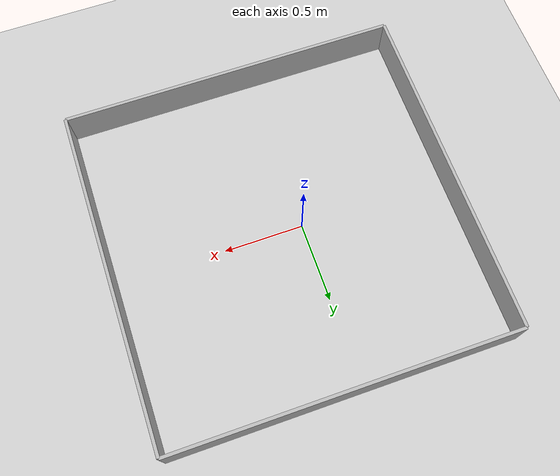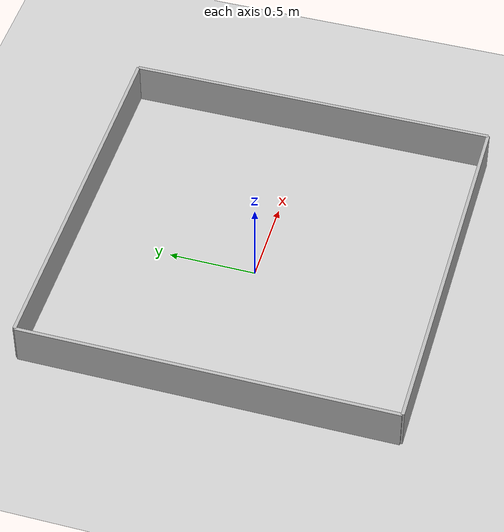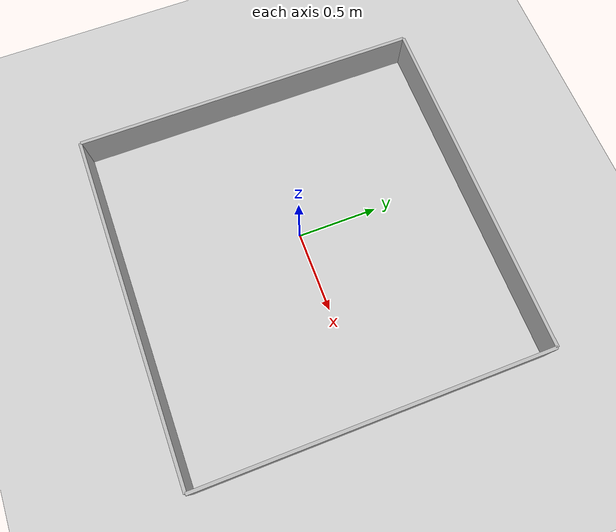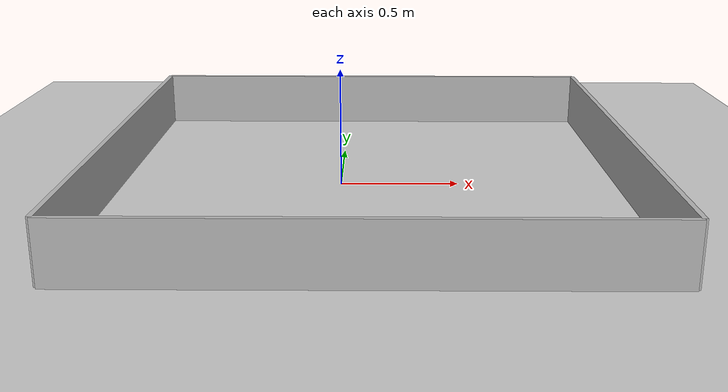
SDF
<?xml version="1.0"?>
  <sdf version="1.4">
    <world name="default">
      <!-- A global light source -->
      <include>
        <uri>model://sun</uri>
      </include>
      <!-- A ground plane -->
      <include>
        <uri>model://ground_plane</uri>
      </include>

      <include>
        <uri>model://testbed</uri>
        <pose>0.12 0.0 0.0 0 0 0</pose>
      </include>

    </world>
  </sdf>

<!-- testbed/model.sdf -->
<sdf version="1.4">
    <model name="testbed_side">
        <static>true</static> <!-- Wall will be immovable -->
        <link name="side_1">
            <pose>1.068 0 0.123 0 0 0</pose>
            <visual>
                <material name="Orange">
                    <color rgba="1.0 0.65 0.3 1.0"/>
                </material>
                <geometry>
                    <box>
                        <size>0.02 2.135 0.246</size>
                    </box>
                </geometry>
            </visual>
            <inertial>
                <mass>1.0</mass>
                <inertia>
                    <ixx>1.0</ixx>
                    <ixy>0.0</ixy>
                    <ixz>0.0</ixz>
                    <iyy>1.0</iyy>
                    <iyz>0.0</iyz>
                    <izz>1.0</izz>
                </inertia>
            </inertial>
            <collision name="collision">
                <geometry>
                    <box>
                        <size>0.02 2.135 0.246</size>
                    </box>
                </geometry>
            </collision>
        </link>

        <link name="side_2">
            <pose>0 1.068 0.123 0 0 1.57</pose>
            <visual>
                <material name="Green">
                    <color rgba="0.0 1.0 0.0 1.0"/>
                </material>
                <geometry>
                    <box>
                        <size>0.02 2.135 0.246</size>
                    </box>
                </geometry>
            </visual>
            <inertial>
                <mass>1.0</mass>
                <inertia>
                    <ixx>1.0</ixx>
                    <ixy>0.0</ixy>
                    <ixz>0.0</ixz>
                    <iyy>1.0</iyy>
                    <iyz>0.0</iyz>
                    <izz>1.0</izz>
                </inertia>
            </inertial>
            <collision name="collision">
                <geometry>
                    <box>
                        <size>0.02 2.135 0.246</size>
                    </box>
                </geometry>
            </collision>
        </link>

        <link name="side_3">
            <pose>-1.068 0 0.123 0 0 0</pose>
            <visual>
                <material name="Cyan">
                    <color rgba="0.0 1.0 1.0 1.0"/>
                </material>
                <geometry>
                    <box>
                        <size>0.02 2.135 0.246</size>
                    </box>
                </geometry>
            </visual>
            <inertial>
                <mass>1.0</mass>
                <inertia>
                    <ixx>1.0</ixx>
                    <ixy>0.0</ixy>
                    <ixz>0.0</ixz>
                    <iyy>1.0</iyy>
                    <iyz>0.0</iyz>
                    <izz>1.0</izz>
                </inertia>
            </inertial>
            <collision name="collision">
                <geometry>
                    <box>
                        <size>0.02 2.135 0.246</size>
                    </box>
                </geometry>
            </collision>
        </link>

        <link name="side_4">
            <pose>0 -1.068 0.123 0 0 -1.57</pose>
            <visual>
                <material name="Purple">
                    <color rgba="0.55 0.0 0.55 1.0"/>
                </material>
                <geometry>
                    <box>
                        <size>0.02 2.135 0.246</size>
                    </box>
                </geometry>
            </visual>
            <inertial>
                <mass>1.0</mass>
                <inertia>
                    <ixx>1.0</ixx>
                    <ixy>0.0</ixy>
                    <ixz>0.0</ixz>
                    <iyy>1.0</iyy>
                    <iyz>0.0</iyz>
                    <izz>1.0</izz>
                </inertia>
            </inertial>
            <collision name="collision">
                <geometry>
                    <box>
                        <size>0.02 2.135 0.246</size>
                    </box>
                </geometry>
            </collision>
        </link>
    </model>
</sdf>
